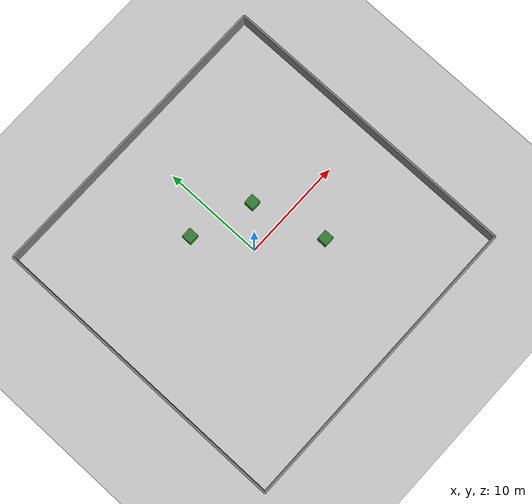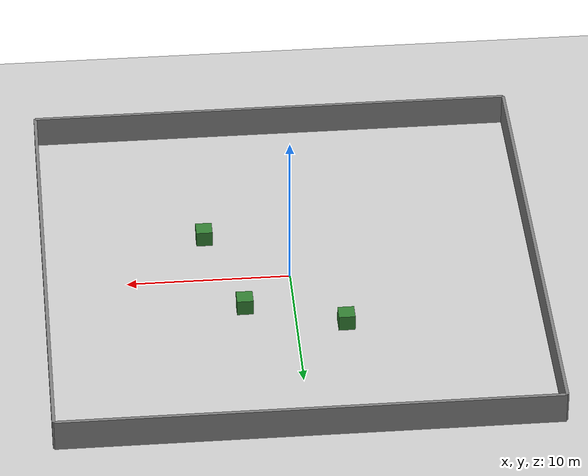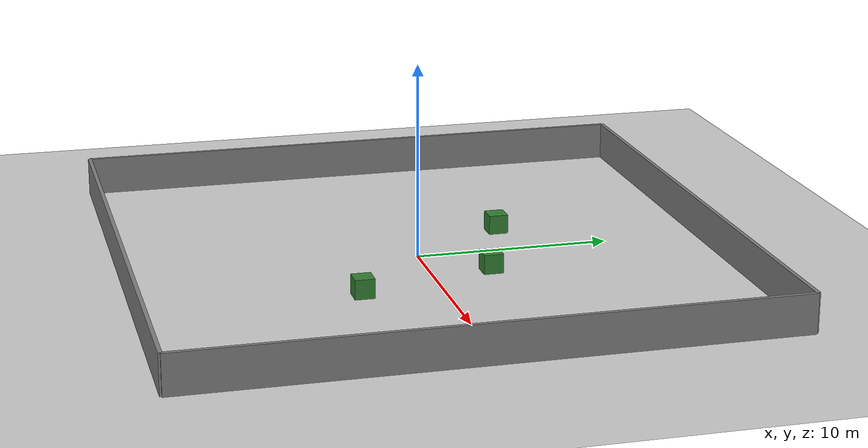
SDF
<sdf version='1.9'>
  <world name='warehouse_world'>

    <gravity>0 0 -9.8</gravity>

    <physics type='ode'>
      <max_step_size>0.001</max_step_size>
      <real_time_factor>1</real_time_factor>
    </physics>

    <plugin name='gz::sim::systems::Physics'
            filename='gz-sim-physics-system'/>
    <plugin name='gz::sim::systems::UserCommands'
            filename='gz-sim-user-commands-system'/>
    <plugin name='gz::sim::systems::SceneBroadcaster'
            filename='gz-sim-scene-broadcaster-system'/>

    <scene>
      <ambient>1 1 1 1</ambient>
      <background>0.3 0.7 0.9 1</background>
      <shadows>0</shadows>
      <grid>true</grid>
    </scene>

    <light type="directional" name="sun">
      <cast_shadows>false</cast_shadows>
      <pose>0 0 10 0 0 0</pose>
      <diffuse>1 1 1 1</diffuse>
      <specular>0.5 0.5 0.5 1</specular>
      <direction>0.1 0.1 -0.9</direction>
    </light>

    <model name='ground_plane'>
      <static>true</static>
      <link name='link'>
        <collision name='collision'>
          <geometry>
            <plane>
              <normal>0 0 1</normal>
              <size>100 100</size>
            </plane>
          </geometry>
        </collision>
        <visual name='visual'>
          <geometry>
            <plane>
              <normal>0 0 1</normal>
              <size>100 100</size>
            </plane>
          </geometry>
          <material>
            <ambient>0.8 0.8 0.8 1</ambient>
            <diffuse>0.8 0.8 0.8 1</diffuse>
          </material>
        </visual>
      </link>
    </model>

    <!-- Simple walls to simulate a warehouse -->
    <model name='wall_north'>
      <static>true</static>
      <pose>0 15 1 0 0 0</pose>
      <link name='link'>
        <collision name='collision'>
          <geometry><box><size>30 0.2 2</size></box></geometry>
        </collision>
        <visual name='visual'>
          <geometry><box><size>30 0.2 2</size></box></geometry>
          <material><ambient>0.5 0.5 0.5 1</ambient></material>
        </visual>
      </link>
    </model>

    <model name='wall_south'>
      <static>true</static>
      <pose>0 -15 1 0 0 0</pose>
      <link name='link'>
        <collision name='collision'>
          <geometry><box><size>30 0.2 2</size></box></geometry>
        </collision>
        <visual name='visual'>
          <geometry><box><size>30 0.2 2</size></box></geometry>
          <material><ambient>0.5 0.5 0.5 1</ambient></material>
        </visual>
      </link>
    </model>

    <model name='wall_east'>
      <static>true</static>
      <pose>15 0 1 0 0 0</pose>
      <link name='link'>
        <collision name='collision'>
          <geometry><box><size>0.2 30 2</size></box></geometry>
        </collision>
        <visual name='visual'>
          <geometry><box><size>0.2 30 2</size></box></geometry>
          <material><ambient>0.5 0.5 0.5 1</ambient></material>
        </visual>
      </link>
    </model>

    <model name='wall_west'>
      <static>true</static>
      <pose>-15 0 1 0 0 0</pose>
      <link name='link'>
        <collision name='collision'>
          <geometry><box><size>0.2 30 2</size></box></geometry>
        </collision>
        <visual name='visual'>
          <geometry><box><size>0.2 30 2</size></box></geometry>
          <material><ambient>0.5 0.5 0.5 1</ambient></material>
        </visual>
      </link>
    </model>

    <!-- Some box obstacles -->
    <model name='box_1'>
      <static>true</static>
      <pose>3 3 0.5 0 0 0</pose>
      <link name='link'>
        <collision name='collision'>
          <geometry><box><size>1 1 1</size></box></geometry>
        </collision>
        <visual name='visual'>
          <geometry><box><size>1 1 1</size></box></geometry>
          <material><ambient>0.2 0.5 0.2 1</ambient></material>
        </visual>
      </link>
    </model>

    <model name='box_2'>
      <static>true</static>
      <pose>-3 5 0.5 0 0 0</pose>
      <link name='link'>
        <collision name='collision'>
          <geometry><box><size>1 1 1</size></box></geometry>
        </collision>
        <visual name='visual'>
          <geometry><box><size>1 1 1</size></box></geometry>
          <material><ambient>0.2 0.5 0.2 1</ambient></material>
        </visual>
      </link>
    </model>

    <model name='box_3'>
      <static>true</static>
      <pose>5 -4 0.5 0 0 0</pose>
      <link name='link'>
        <collision name='collision'>
          <geometry><box><size>1 1 1</size></box></geometry>
        </collision>
        <visual name='visual'>
          <geometry><box><size>1 1 1</size></box></geometry>
          <material><ambient>0.2 0.5 0.2 1</ambient></material>
        </visual>
      </link>
    </model>

  </world>
</sdf>
